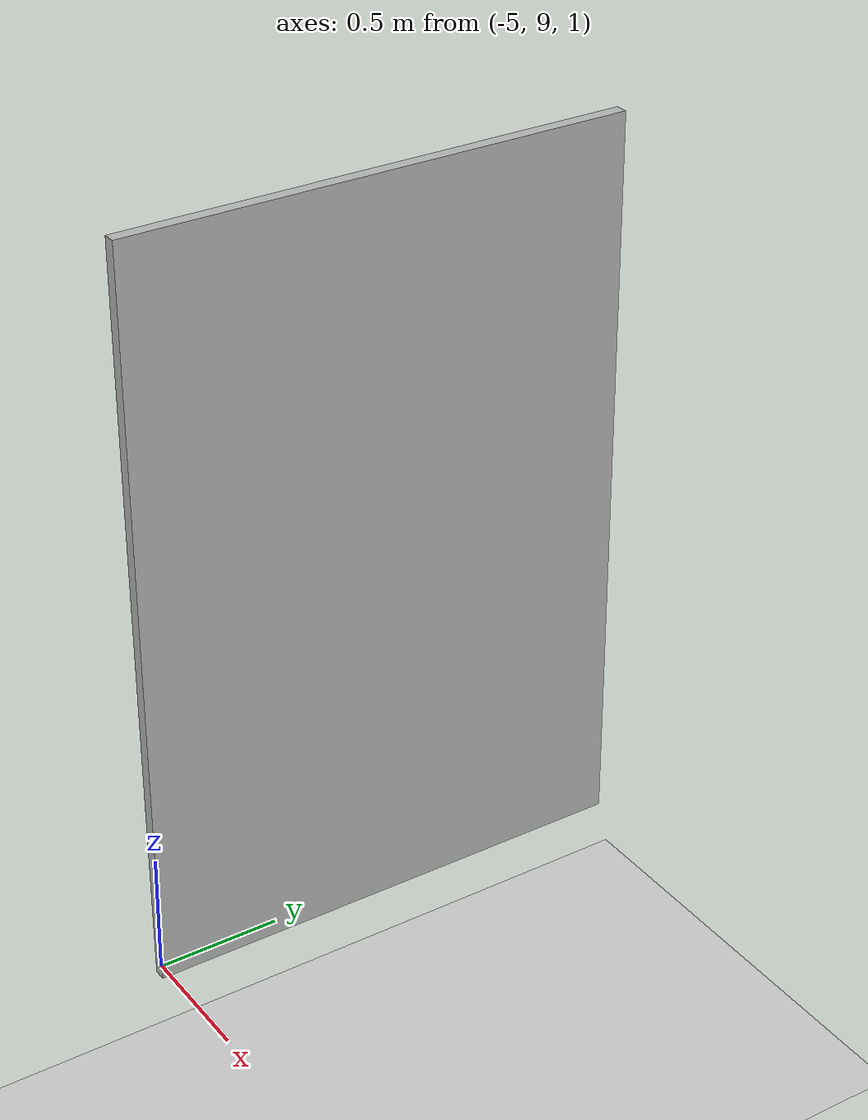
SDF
<?xml version="1.0" ?>
<sdf version="1.5">
  <world name="default">
    <!-- A global light source -->
    <include>
      <uri>model://sun</uri>
    </include>
    <!-- A ground plane -->

    <include>
    <!-- The marker -->
    <uri>model://aruco_marker</uri>
    <!-- Marker position -->
    <pose>-5 10 2.5 0 1.59 3.14</pose>
    </include>

    <include>
      <uri>model://ground_plane</uri>
    </include>
    <include>
      <uri>model://asphalt_plane</uri>
    </include>
    <plugin name='wind_plugin' filename='libgazebo_wind_plugin.so'>
      <frameId>base_link</frameId>
      <robotNamespace/>
      <xyzOffset>1 0 0</xyzOffset>
      <windDirectionMean>0 1 0</windDirectionMean>
      <windVelocityMean>0.0</windVelocityMean>
      <windGustDirection>1 0 0</windGustDirection>
      <windGustDuration>2</windGustDuration>
      <windGustStart>0</windGustStart>
      <windGustVelocityMean>0</windGustVelocityMean>
      <windPubTopic>world_wind</windPubTopic>
    </plugin>
    <physics name='default_physics' default='0' type='ode'>
      <gravity>0 0 -9.8066</gravity>
      <ode>
        <solver>
          <type>quick</type>
          <iters>10</iters>
          <sor>1.3</sor>
          <use_dynamic_moi_rescaling>0</use_dynamic_moi_rescaling>
        </solver>
        <constraints>
          <cfm>0</cfm>
          <erp>0.2</erp>
          <contact_max_correcting_vel>100</contact_max_correcting_vel>
          <contact_surface_layer>0.001</contact_surface_layer>
        </constraints>
      </ode>
      <max_step_size>0.004</max_step_size>
      <real_time_factor>1</real_time_factor>
      <real_time_update_rate>250</real_time_update_rate>
      <magnetic_field>6.0e-6 2.3e-5 -4.2e-5</magnetic_field>
    </physics>
  </world>
</sdf>

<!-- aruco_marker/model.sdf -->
<sdf version="1.5">
  <model name="aruco_marker">
    <static>true</static>
    <link name="link">
      <collision name="collision">
        <geometry>
          <box>
            <size>3.02375 1.9 0.05</size>
          </box>
        </geometry>
      </collision>
      <visual name="visual">
        <pose>0.0 0.0 0 0 0 0</pose>
        <cast_shadows>false</cast_shadows>
        <geometry>
          <box>
            <size>3.02375 2.05 0.05</size>
          </box>
        </geometry>
        <material>
          <script>
            <uri>model://aruco_marker/materials/scripts</uri>
            <uri>model://aruco_marker/materials/textures</uri>
            <name>vrc/marker</name>
          </script>
        </material>
      </visual>
    </link>
  </model>
</sdf>
